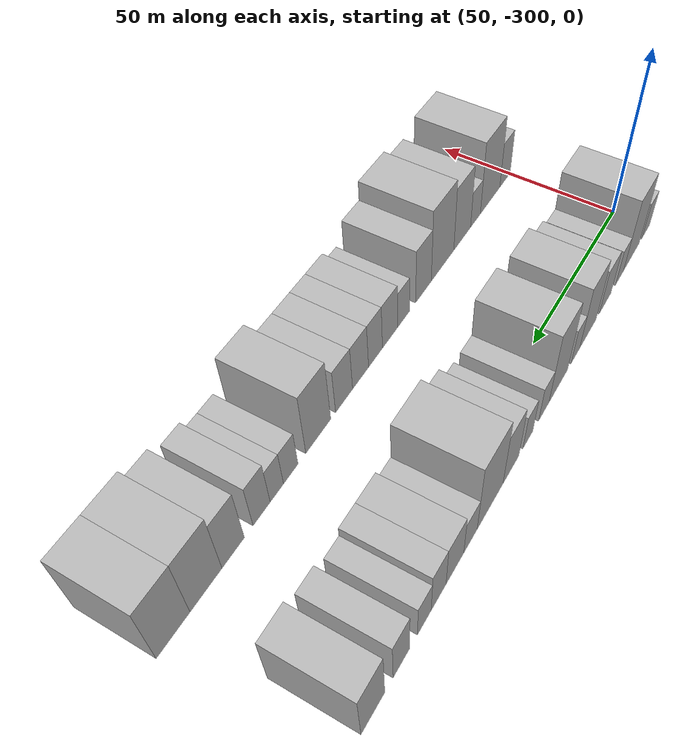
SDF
<sdf version="1.6">
 <world name="default">
  <model name="building_1">
   <static>1</static>
   <pose>50.0000 -297.1973 0 0.000000 0.000000 0.000000</pose>
   <link name="link">
    <pose>0 0 6.00 0 0 0</pose>
    <collision name="collision"><geometry><box><size>20.0000 5.6054 12.0000</size></box></geometry></collision>
    <visual name="visual">
     <cast_shadows>0</cast_shadows>
     <geometry><box><size>20.0000 5.6054 12.0000</size></box></geometry>
     <material>
      <script>
       <uri>model://HANNAS_wall/materials/scripts</uri>
       <uri>model://HANNAS_wall/materials/textures</uri>
       <name>vrc/HANNAS_wall</name>
      </script>
     </material>
    </visual>
   </link>
  </model>
  <model name="building_2">
   <static>1</static>
   <pose>50.0000 -286.9371 0 0.000000 0.000000 0.000000</pose>
   <link name="link">
    <pose>0 0 12.00 0 0 0</pose>
    <collision name="collision"><geometry><box><size>20.0000 10.9151 24.0000</size></box></geometry></collision>
    <visual name="visual">
     <cast_shadows>0</cast_shadows>
     <geometry><box><size>20.0000 10.9151 24.0000</size></box></geometry>
     <material>
      <script>
       <uri>model://HANNAS_wall/materials/scripts</uri>
       <uri>model://HANNAS_wall/materials/textures</uri>
       <name>vrc/HANNAS_wall</name>
      </script>
     </material>
    </visual>
   </link>
  </model>
  <model name="building_3">
   <static>1</static>
   <pose>50.0000 -278.8624 0 0.000000 0.000000 0.000000</pose>
   <link name="link">
    <pose>0 0 6.00 0 0 0</pose>
    <collision name="collision"><geometry><box><size>20.0000 5.2342 12.0000</size></box></geometry></collision>
    <visual name="visual">
     <cast_shadows>0</cast_shadows>
     <geometry><box><size>20.0000 5.2342 12.0000</size></box></geometry>
     <material>
      <script>
       <uri>model://HANNAS_wall/materials/scripts</uri>
       <uri>model://HANNAS_wall/materials/textures</uri>
       <name>vrc/HANNAS_wall</name>
      </script>
     </material>
    </visual>
   </link>
  </model>
  <model name="building_4">
   <static>1</static>
   <pose>50.0000 -269.5270 0 0.000000 0.000000 0.000000</pose>
   <link name="link">
    <pose>0 0 7.50 0 0 0</pose>
    <collision name="collision"><geometry><box><size>20.0000 7.4367 15.0000</size></box></geometry></collision>
    <visual name="visual">
     <cast_shadows>0</cast_shadows>
     <geometry><box><size>20.0000 7.4367 15.0000</size></box></geometry>
     <material>
      <script>
       <uri>model://HANNAS_wall/materials/scripts</uri>
       <uri>model://HANNAS_wall/materials/textures</uri>
       <name>vrc/HANNAS_wall</name>
      </script>
     </material>
    </visual>
   </link>
  </model>
  <model name="building_5">
   <static>1</static>
   <pose>50.0000 -258.8061 0 0.000000 0.000000 0.000000</pose>
   <link name="link">
    <pose>0 0 10.50 0 0 0</pose>
    <collision name="collision"><geometry><box><size>20.0000 10.0052 21.0000</size></box></geometry></collision>
    <visual name="visual">
     <cast_shadows>0</cast_shadows>
     <geometry><box><size>20.0000 10.0052 21.0000</size></box></geometry>
     <material>
      <script>
       <uri>model://HANNAS_wall/materials/scripts</uri>
       <uri>model://HANNAS_wall/materials/textures</uri>
       <name>vrc/HANNAS_wall</name>
      </script>
     </material>
    </visual>
   </link>
  </model>
  <model name="building_6">
   <static>1</static>
   <pose>50.0000 -251.2828 0 0.000000 0.000000 0.000000</pose>
   <link name="link">
    <pose>0 0 6.00 0 0 0</pose>
    <collision name="collision"><geometry><box><size>20.0000 5.0414 12.0000</size></box></geometry></collision>
    <visual name="visual">
     <cast_shadows>0</cast_shadows>
     <geometry><box><size>20.0000 5.0414 12.0000</size></box></geometry>
     <material>
      <script>
       <uri>model://HANNAS_wall/materials/scripts</uri>
       <uri>model://HANNAS_wall/materials/textures</uri>
       <name>vrc/HANNAS_wall</name>
      </script>
     </material>
    </visual>
   </link>
  </model>
  <model name="building_7">
   <static>1</static>
   <pose>50.0000 -241.5518 0 0.000000 0.000000 0.000000</pose>
   <link name="link">
    <pose>0 0 12.00 0 0 0</pose>
    <collision name="collision"><geometry><box><size>20.0000 10.4205 24.0000</size></box></geometry></collision>
    <visual name="visual">
     <cast_shadows>0</cast_shadows>
     <geometry><box><size>20.0000 10.4205 24.0000</size></box></geometry>
     <material>
      <script>
       <uri>model://HANNAS_wall/materials/scripts</uri>
       <uri>model://HANNAS_wall/materials/textures</uri>
       <name>vrc/HANNAS_wall</name>
      </script>
     </material>
    </visual>
   </link>
  </model>
  <model name="building_8">
   <static>1</static>
   <pose>50.0000 -233.5852 0 0.000000 0.000000 0.000000</pose>
   <link name="link">
    <pose>0 0 6.00 0 0 0</pose>
    <collision name="collision"><geometry><box><size>20.0000 5.5127 12.0000</size></box></geometry></collision>
    <visual name="visual">
     <cast_shadows>0</cast_shadows>
     <geometry><box><size>20.0000 5.5127 12.0000</size></box></geometry>
     <material>
      <script>
       <uri>model://HANNAS_wall/materials/scripts</uri>
       <uri>model://HANNAS_wall/materials/textures</uri>
       <name>vrc/HANNAS_wall</name>
      </script>
     </material>
    </visual>
   </link>
  </model>
  <model name="building_9">
   <static>1</static>
   <pose>50.0000 -225.2683 0 0.000000 0.000000 0.000000</pose>
   <link name="link">
    <pose>0 0 6.00 0 0 0</pose>
    <collision name="collision"><geometry><box><size>20.0000 5.1211 12.0000</size></box></geometry></collision>
    <visual name="visual">
     <cast_shadows>0</cast_shadows>
     <geometry><box><size>20.0000 5.1211 12.0000</size></box></geometry>
     <material>
      <script>
       <uri>model://HANNAS_wall/materials/scripts</uri>
       <uri>model://HANNAS_wall/materials/textures</uri>
       <name>vrc/HANNAS_wall</name>
      </script>
     </material>
    </visual>
   </link>
  </model>
  <model name="building_10">
   <static>1</static>
   <pose>50.0000 -216.8005 0 0.000000 0.000000 0.000000</pose>
   <link name="link">
    <pose>0 0 9.00 0 0 0</pose>
    <collision name="collision"><geometry><box><size>20.0000 7.8146 18.0000</size></box></geometry></collision>
    <visual name="visual">
     <cast_shadows>0</cast_shadows>
     <geometry><box><size>20.0000 7.8146 18.0000</size></box></geometry>
     <material>
      <script>
       <uri>model://HANNAS_wall/materials/scripts</uri>
       <uri>model://HANNAS_wall/materials/textures</uri>
       <name>vrc/HANNAS_wall</name>
      </script>
     </material>
    </visual>
   </link>
  </model>
  <model name="building_11">
   <static>1</static>
   <pose>50.0000 -206.9055 0 0.000000 0.000000 0.000000</pose>
   <link name="link">
    <pose>0 0 12.00 0 0 0</pose>
    <collision name="collision"><geometry><box><size>20.0000 11.9755 24.0000</size></box></geometry></collision>
    <visual name="visual">
     <cast_shadows>0</cast_shadows>
     <geometry><box><size>20.0000 11.9755 24.0000</size></box></geometry>
     <material>
      <script>
       <uri>model://HANNAS_wall/materials/scripts</uri>
       <uri>model://HANNAS_wall/materials/textures</uri>
       <name>vrc/HANNAS_wall</name>
      </script>
     </material>
    </visual>
   </link>
  </model>
  <model name="building_12">
   <static>1</static>
   <pose>50.0000 -197.9457 0 0.000000 0.000000 0.000000</pose>
   <link name="link">
    <pose>0 0 6.00 0 0 0</pose>
    <collision name="collision"><geometry><box><size>20.0000 5.9440 12.0000</size></box></geometry></collision>
    <visual name="visual">
     <cast_shadows>0</cast_shadows>
     <geometry><box><size>20.0000 5.9440 12.0000</size></box></geometry>
     <material>
      <script>
       <uri>model://HANNAS_wall/materials/scripts</uri>
       <uri>model://HANNAS_wall/materials/textures</uri>
       <name>vrc/HANNAS_wall</name>
      </script>
     </material>
    </visual>
   </link>
  </model>
  <model name="building_13">
   <static>1</static>
   <pose>50.0000 -191.2312 0 0.000000 0.000000 0.000000</pose>
   <link name="link">
    <pose>0 0 7.50 0 0 0</pose>
    <collision name="collision"><geometry><box><size>20.0000 7.4850 15.0000</size></box></geometry></collision>
    <visual name="visual">
     <cast_shadows>0</cast_shadows>
     <geometry><box><size>20.0000 7.4850 15.0000</size></box></geometry>
     <material>
      <script>
       <uri>model://HANNAS_wall/materials/scripts</uri>
       <uri>model://HANNAS_wall/materials/textures</uri>
       <name>vrc/HANNAS_wall</name>
      </script>
     </material>
    </visual>
   </link>
  </model>
  <model name="building_14">
   <static>1</static>
   <pose>50.0000 -184.4612 0 0.000000 0.000000 0.000000</pose>
   <link name="link">
    <pose>0 0 7.50 0 0 0</pose>
    <collision name="collision"><geometry><box><size>20.0000 6.0550 15.0000</size></box></geometry></collision>
    <visual name="visual">
     <cast_shadows>0</cast_shadows>
     <geometry><box><size>20.0000 6.0550 15.0000</size></box></geometry>
     <material>
      <script>
       <uri>model://HANNAS_wall/materials/scripts</uri>
       <uri>model://HANNAS_wall/materials/textures</uri>
       <name>vrc/HANNAS_wall</name>
      </script>
     </material>
    </visual>
   </link>
  </model>
  <model name="building_15">
   <static>1</static>
   <pose>50.0000 -178.7325 0 0.000000 0.000000 0.000000</pose>
   <link name="link">
    <pose>0 0 6.00 0 0 0</pose>
    <collision name="collision"><geometry><box><size>20.0000 5.4024 12.0000</size></box></geometry></collision>
    <visual name="visual">
     <cast_shadows>0</cast_shadows>
     <geometry><box><size>20.0000 5.4024 12.0000</size></box></geometry>
     <material>
      <script>
       <uri>model://HANNAS_wall/materials/scripts</uri>
       <uri>model://HANNAS_wall/materials/textures</uri>
       <name>vrc/HANNAS_wall</name>
      </script>
     </material>
    </visual>
   </link>
  </model>
  <model name="building_16">
   <static>1</static>
   <pose>50.0000 -169.9344 0 0.000000 0.000000 0.000000</pose>
   <link name="link">
    <pose>0 0 7.50 0 0 0</pose>
    <collision name="collision"><geometry><box><size>20.0000 6.1939 15.0000</size></box></geometry></collision>
    <visual name="visual">
     <cast_shadows>0</cast_shadows>
     <geometry><box><size>20.0000 6.1939 15.0000</size></box></geometry>
     <material>
      <script>
       <uri>model://HANNAS_wall/materials/scripts</uri>
       <uri>model://HANNAS_wall/materials/textures</uri>
       <name>vrc/HANNAS_wall</name>
      </script>
     </material>
    </visual>
   </link>
  </model>
  <model name="building_17">
   <static>1</static>
   <pose>50.0000 -159.6488 0 0.000000 0.000000 0.000000</pose>
   <link name="link">
    <pose>0 0 9.00 0 0 0</pose>
    <collision name="collision"><geometry><box><size>20.0000 8.3773 18.0000</size></box></geometry></collision>
    <visual name="visual">
     <cast_shadows>0</cast_shadows>
     <geometry><box><size>20.0000 8.3773 18.0000</size></box></geometry>
     <material>
      <script>
       <uri>model://HANNAS_wall/materials/scripts</uri>
       <uri>model://HANNAS_wall/materials/textures</uri>
       <name>vrc/HANNAS_wall</name>
      </script>
     </material>
    </visual>
   </link>
  </model>
  <model name="building_73">
   <static>1</static>
   <pose>90.0000 -296.8129 0 0.000000 0.000000 0.000000</pose>
   <link name="link">
    <pose>0 0 7.50 0 0 0</pose>
    <collision name="collision"><geometry><box><size>20.0000 6.3741 15.0000</size></box></geometry></collision>
    <visual name="visual">
     <cast_shadows>0</cast_shadows>
     <geometry><box><size>20.0000 6.3741 15.0000</size></box></geometry>
     <material>
      <script>
       <uri>model://HANNAS_wall/materials/scripts</uri>
       <uri>model://HANNAS_wall/materials/textures</uri>
       <name>vrc/HANNAS_wall</name>
      </script>
     </material>
    </visual>
   </link>
  </model>
  <model name="building_74">
   <static>1</static>
   <pose>90.0000 -287.8326 0 0.000000 0.000000 0.000000</pose>
   <link name="link">
    <pose>0 0 12.00 0 0 0</pose>
    <collision name="collision"><geometry><box><size>20.0000 11.5865 24.0000</size></box></geometry></collision>
    <visual name="visual">
     <cast_shadows>0</cast_shadows>
     <geometry><box><size>20.0000 11.5865 24.0000</size></box></geometry>
     <material>
      <script>
       <uri>model://HANNAS_wall/materials/scripts</uri>
       <uri>model://HANNAS_wall/materials/textures</uri>
       <name>vrc/HANNAS_wall</name>
      </script>
     </material>
    </visual>
   </link>
  </model>
  <model name="building_75">
   <static>1</static>
   <pose>90.0000 -279.2050 0 0.000000 0.000000 0.000000</pose>
   <link name="link">
    <pose>0 0 6.00 0 0 0</pose>
    <collision name="collision"><geometry><box><size>20.0000 5.6688 12.0000</size></box></geometry></collision>
    <visual name="visual">
     <cast_shadows>0</cast_shadows>
     <geometry><box><size>20.0000 5.6688 12.0000</size></box></geometry>
     <material>
      <script>
       <uri>model://HANNAS_wall/materials/scripts</uri>
       <uri>model://HANNAS_wall/materials/textures</uri>
       <name>vrc/HANNAS_wall</name>
      </script>
     </material>
    </visual>
   </link>
  </model>
  <model name="building_76">
   <static>1</static>
   <pose>90.0000 -271.7044 0 0.000000 0.000000 0.000000</pose>
   <link name="link">
    <pose>0 0 10.50 0 0 0</pose>
    <collision name="collision"><geometry><box><size>20.0000 9.3324 21.0000</size></box></geometry></collision>
    <visual name="visual">
     <cast_shadows>0</cast_shadows>
     <geometry><box><size>20.0000 9.3324 21.0000</size></box></geometry>
     <material>
      <script>
       <uri>model://HANNAS_wall/materials/scripts</uri>
       <uri>model://HANNAS_wall/materials/textures</uri>
       <name>vrc/HANNAS_wall</name>
      </script>
     </material>
    </visual>
   </link>
  </model>
  <model name="building_77">
   <static>1</static>
   <pose>90.0000 -261.0698 0 0.000000 0.000000 0.000000</pose>
   <link name="link">
    <pose>0 0 12.00 0 0 0</pose>
    <collision name="collision"><geometry><box><size>20.0000 11.9368 24.0000</size></box></geometry></collision>
    <visual name="visual">
     <cast_shadows>0</cast_shadows>
     <geometry><box><size>20.0000 11.9368 24.0000</size></box></geometry>
     <material>
      <script>
       <uri>model://HANNAS_wall/materials/scripts</uri>
       <uri>model://HANNAS_wall/materials/textures</uri>
       <name>vrc/HANNAS_wall</name>
      </script>
     </material>
    </visual>
   </link>
  </model>
  <model name="building_78">
   <static>1</static>
   <pose>90.0000 -251.1423 0 0.000000 0.000000 0.000000</pose>
   <link name="link">
    <pose>0 0 9.00 0 0 0</pose>
    <collision name="collision"><geometry><box><size>20.0000 7.9182 18.0000</size></box></geometry></collision>
    <visual name="visual">
     <cast_shadows>0</cast_shadows>
     <geometry><box><size>20.0000 7.9182 18.0000</size></box></geometry>
     <material>
      <script>
       <uri>model://HANNAS_wall/materials/scripts</uri>
       <uri>model://HANNAS_wall/materials/textures</uri>
       <name>vrc/HANNAS_wall</name>
      </script>
     </material>
    </visual>
   </link>
  </model>
  <model name="building_79">
   <static>1</static>
   <pose>90.0000 -241.3103 0 0.000000 0.000000 0.000000</pose>
   <link name="link">
    <pose>0 0 6.00 0 0 0</pose>
    <collision name="collision"><geometry><box><size>20.0000 5.7458 12.0000</size></box></geometry></collision>
    <visual name="visual">
     <cast_shadows>0</cast_shadows>
     <geometry><box><size>20.0000 5.7458 12.0000</size></box></geometry>
     <material>
      <script>
       <uri>model://HANNAS_wall/materials/scripts</uri>
       <uri>model://HANNAS_wall/materials/textures</uri>
       <name>vrc/HANNAS_wall</name>
      </script>
     </material>
    </visual>
   </link>
  </model>
  <model name="building_80">
   <static>1</static>
   <pose>90.0000 -234.8576 0 0.000000 0.000000 0.000000</pose>
   <link name="link">
    <pose>0 0 7.50 0 0 0</pose>
    <collision name="collision"><geometry><box><size>20.0000 7.1597 15.0000</size></box></geometry></collision>
    <visual name="visual">
     <cast_shadows>0</cast_shadows>
     <geometry><box><size>20.0000 7.1597 15.0000</size></box></geometry>
     <material>
      <script>
       <uri>model://HANNAS_wall/materials/scripts</uri>
       <uri>model://HANNAS_wall/materials/textures</uri>
       <name>vrc/HANNAS_wall</name>
      </script>
     </material>
    </visual>
   </link>
  </model>
  <model name="building_81">
   <static>1</static>
   <pose>90.0000 -228.1220 0 0.000000 0.000000 0.000000</pose>
   <link name="link">
    <pose>0 0 7.50 0 0 0</pose>
    <collision name="collision"><geometry><box><size>20.0000 6.3115 15.0000</size></box></geometry></collision>
    <visual name="visual">
     <cast_shadows>0</cast_shadows>
     <geometry><box><size>20.0000 6.3115 15.0000</size></box></geometry>
     <material>
      <script>
       <uri>model://HANNAS_wall/materials/scripts</uri>
       <uri>model://HANNAS_wall/materials/textures</uri>
       <name>vrc/HANNAS_wall</name>
      </script>
     </material>
    </visual>
   </link>
  </model>
  <model name="building_82">
   <static>1</static>
   <pose>90.0000 -221.4721 0 0.000000 0.000000 0.000000</pose>
   <link name="link">
    <pose>0 0 7.50 0 0 0</pose>
    <collision name="collision"><geometry><box><size>20.0000 6.9882 15.0000</size></box></geometry></collision>
    <visual name="visual">
     <cast_shadows>0</cast_shadows>
     <geometry><box><size>20.0000 6.9882 15.0000</size></box></geometry>
     <material>
      <script>
       <uri>model://HANNAS_wall/materials/scripts</uri>
       <uri>model://HANNAS_wall/materials/textures</uri>
       <name>vrc/HANNAS_wall</name>
      </script>
     </material>
    </visual>
   </link>
  </model>
  <model name="building_83">
   <static>1</static>
   <pose>90.0000 -214.3779 0 0.000000 0.000000 0.000000</pose>
   <link name="link">
    <pose>0 0 7.50 0 0 0</pose>
    <collision name="collision"><geometry><box><size>20.0000 7.2004 15.0000</size></box></geometry></collision>
    <visual name="visual">
     <cast_shadows>0</cast_shadows>
     <geometry><box><size>20.0000 7.2004 15.0000</size></box></geometry>
     <material>
      <script>
       <uri>model://HANNAS_wall/materials/scripts</uri>
       <uri>model://HANNAS_wall/materials/textures</uri>
       <name>vrc/HANNAS_wall</name>
      </script>
     </material>
    </visual>
   </link>
  </model>
  <model name="building_84">
   <static>1</static>
   <pose>90.0000 -203.7743 0 0.000000 0.000000 0.000000</pose>
   <link name="link">
    <pose>0 0 10.50 0 0 0</pose>
    <collision name="collision"><geometry><box><size>20.0000 10.0068 21.0000</size></box></geometry></collision>
    <visual name="visual">
     <cast_shadows>0</cast_shadows>
     <geometry><box><size>20.0000 10.0068 21.0000</size></box></geometry>
     <material>
      <script>
       <uri>model://HANNAS_wall/materials/scripts</uri>
       <uri>model://HANNAS_wall/materials/textures</uri>
       <name>vrc/HANNAS_wall</name>
      </script>
     </material>
    </visual>
   </link>
  </model>
  <model name="building_85">
   <static>1</static>
   <pose>90.0000 -193.0289 0 0.000000 0.000000 0.000000</pose>
   <link name="link">
    <pose>0 0 6.00 0 0 0</pose>
    <collision name="collision"><geometry><box><size>20.0000 5.4839 12.0000</size></box></geometry></collision>
    <visual name="visual">
     <cast_shadows>0</cast_shadows>
     <geometry><box><size>20.0000 5.4839 12.0000</size></box></geometry>
     <material>
      <script>
       <uri>model://HANNAS_wall/materials/scripts</uri>
       <uri>model://HANNAS_wall/materials/textures</uri>
       <name>vrc/HANNAS_wall</name>
      </script>
     </material>
    </visual>
   </link>
  </model>
  <model name="building_86">
   <static>1</static>
   <pose>90.0000 -187.8375 0 0.000000 0.000000 0.000000</pose>
   <link name="link">
    <pose>0 0 6.00 0 0 0</pose>
    <collision name="collision"><geometry><box><size>20.0000 4.8991 12.0000</size></box></geometry></collision>
    <visual name="visual">
     <cast_shadows>0</cast_shadows>
     <geometry><box><size>20.0000 4.8991 12.0000</size></box></geometry>
     <material>
      <script>
       <uri>model://HANNAS_wall/materials/scripts</uri>
       <uri>model://HANNAS_wall/materials/textures</uri>
       <name>vrc/HANNAS_wall</name>
      </script>
     </material>
    </visual>
   </link>
  </model>
  <model name="building_87">
   <static>1</static>
   <pose>90.0000 -182.3242 0 0.000000 0.000000 0.000000</pose>
   <link name="link">
    <pose>0 0 7.50 0 0 0</pose>
    <collision name="collision"><geometry><box><size>20.0000 6.1274 15.0000</size></box></geometry></collision>
    <visual name="visual">
     <cast_shadows>0</cast_shadows>
     <geometry><box><size>20.0000 6.1274 15.0000</size></box></geometry>
     <material>
      <script>
       <uri>model://HANNAS_wall/materials/scripts</uri>
       <uri>model://HANNAS_wall/materials/textures</uri>
       <name>vrc/HANNAS_wall</name>
      </script>
     </material>
    </visual>
   </link>
  </model>
  <model name="building_88">
   <static>1</static>
   <pose>90.0000 -172.4756 0 0.000000 0.000000 0.000000</pose>
   <link name="link">
    <pose>0 0 9.00 0 0 0</pose>
    <collision name="collision"><geometry><box><size>20.0000 7.5699 18.0000</size></box></geometry></collision>
    <visual name="visual">
     <cast_shadows>0</cast_shadows>
     <geometry><box><size>20.0000 7.5699 18.0000</size></box></geometry>
     <material>
      <script>
       <uri>model://HANNAS_wall/materials/scripts</uri>
       <uri>model://HANNAS_wall/materials/textures</uri>
       <name>vrc/HANNAS_wall</name>
      </script>
     </material>
    </visual>
   </link>
  </model>
  <model name="building_89">
   <static>1</static>
   <pose>90.0000 -163.5721 0 0.000000 0.000000 0.000000</pose>
   <link name="link">
    <pose>0 0 10.50 0 0 0</pose>
    <collision name="collision"><geometry><box><size>20.0000 10.2371 21.0000</size></box></geometry></collision>
    <visual name="visual">
     <cast_shadows>0</cast_shadows>
     <geometry><box><size>20.0000 10.2371 21.0000</size></box></geometry>
     <material>
      <script>
       <uri>model://HANNAS_wall/materials/scripts</uri>
       <uri>model://HANNAS_wall/materials/textures</uri>
       <name>vrc/HANNAS_wall</name>
      </script>
     </material>
    </visual>
   </link>
  </model>
  <model name="building_90">
   <static>1</static>
   <pose>90.0000 -153.3421 0 0.000000 0.000000 0.000000</pose>
   <link name="link">
    <pose>0 0 10.50 0 0 0</pose>
    <collision name="collision"><geometry><box><size>20.0000 10.2229 21.0000</size></box></geometry></collision>
    <visual name="visual">
     <cast_shadows>0</cast_shadows>
     <geometry><box><size>20.0000 10.2229 21.0000</size></box></geometry>
     <material>
      <script>
       <uri>model://HANNAS_wall/materials/scripts</uri>
       <uri>model://HANNAS_wall/materials/textures</uri>
       <name>vrc/HANNAS_wall</name>
      </script>
     </material>
    </visual>
   </link>
  </model>
 </world>
</sdf>
